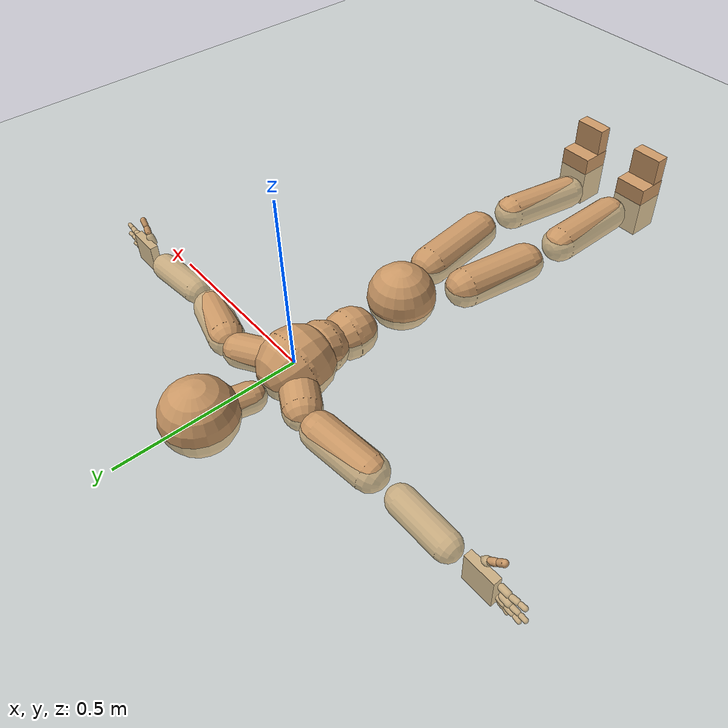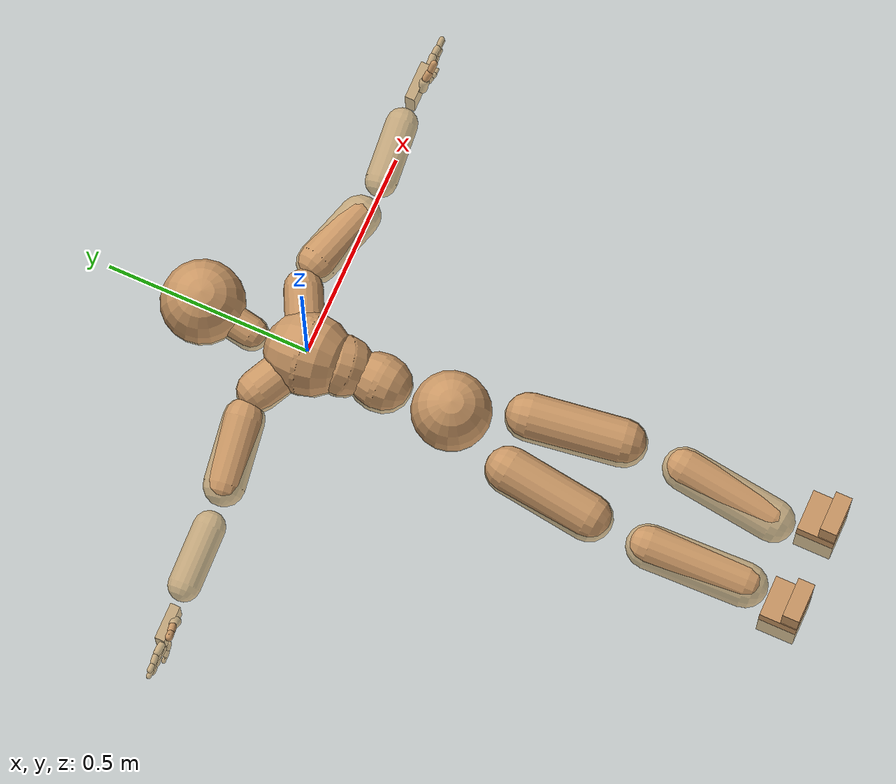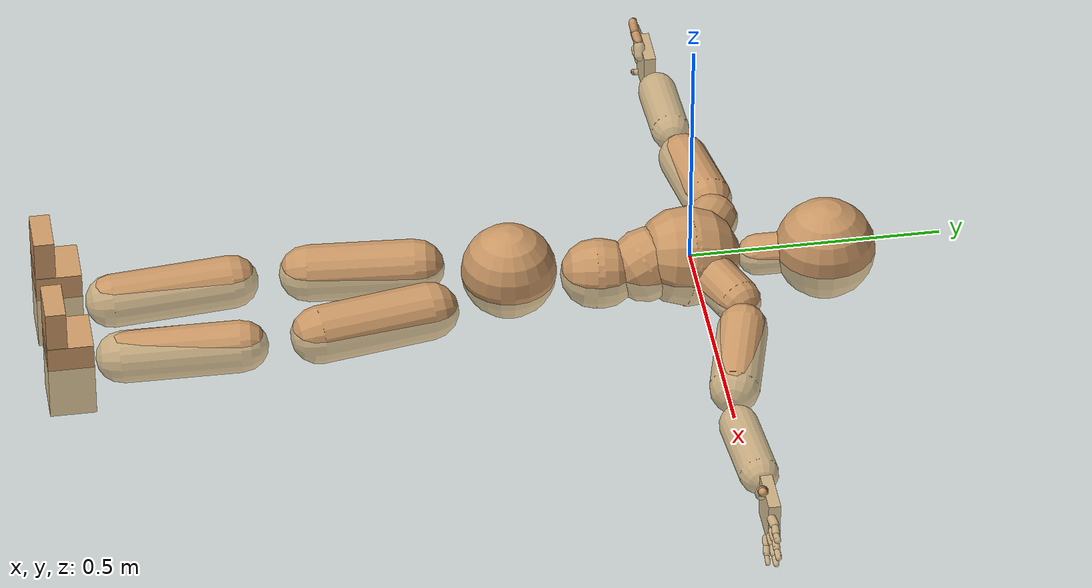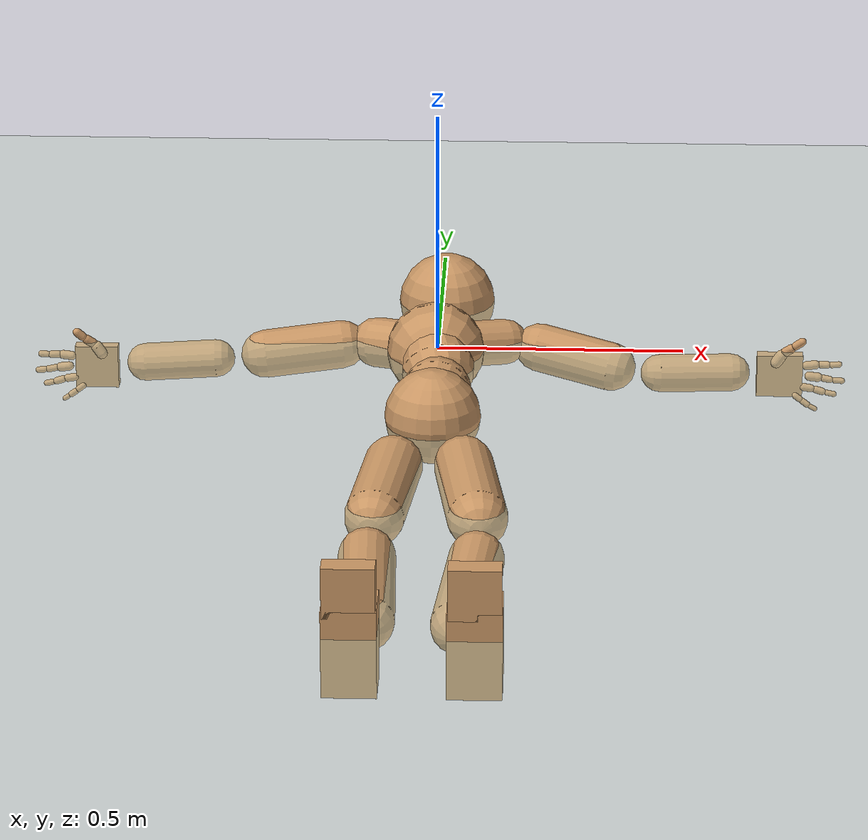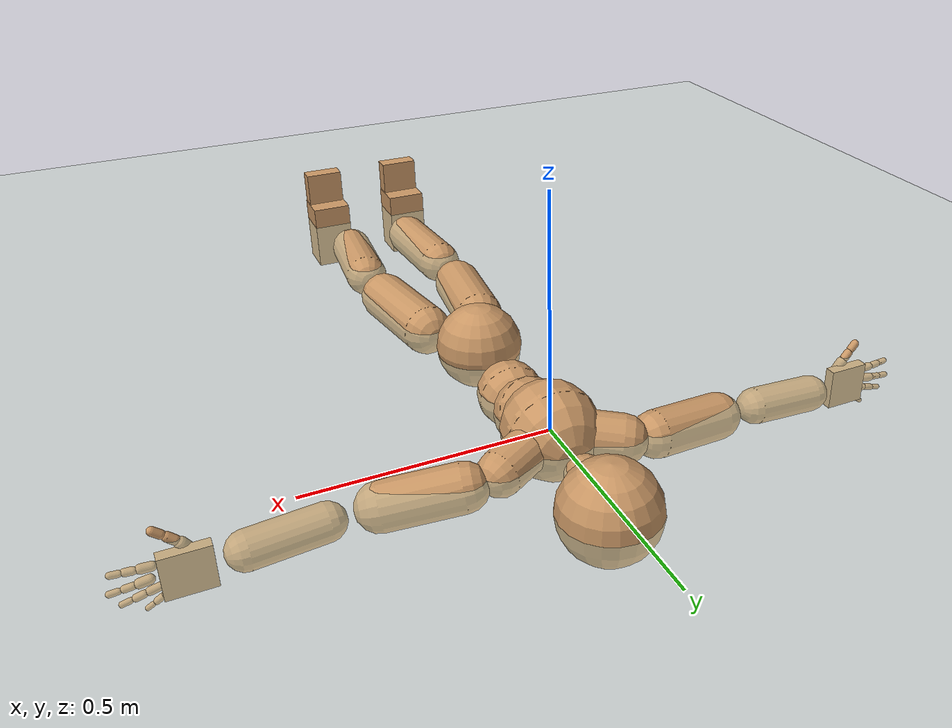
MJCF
<mujoco model="humanoid">
  <compiler coordinate="local"/>
  <default>
    <joint damping="0.0" armature="0.01" stiffness="0.0" limited="true"/>
    <geom conaffinity="1" condim="3" contype="7" margin="0.001" rgba="0.8 0.6 .4 1"/>
  </default>
  <asset>
    <texture type="skybox" builtin="gradient" rgb1=".4 .5 .6" rgb2="0 0 0" width="100" height="100"/>
    <texture builtin="flat" height="1278" mark="cross" markrgb="1 1 1" name="texgeom" random="0.01" rgb1="0.8 0.6 0.4" rgb2="0.8 0.6 0.4" type="cube" width="127"/>
    <texture builtin="checker" height="100" name="texplane" rgb1="0 0 0" rgb2="0.8 0.8 0.8" type="2d" width="100"/>
    <material name="MatPlane" reflectance="0.5" shininess="1" specular="1" texrepeat="60 60" texture="texplane"/>
    <material name="geom" texture="texgeom" texuniform="true"/>
  </asset>
  <worldbody>
    <light cutoff="100" diffuse="1 1 1" dir="-0 0 -1.3" directional="true" exponent="1" pos="0 0 1.3" specular=".1 .1 .1"/>
    <geom conaffinity="1" condim="3" name="floor" pos="0 0 0" rgba="0.8 0.9 0.8 1" size="100 100 .2" type="plane" material="MatPlane"/>
    <body name="Pelvis" pos="0.0029 -0.3606 0.0098">
      <freejoint name="Pelvis"/>
      <geom type="sphere" contype="1" conaffinity="1" density="4629.6296296296305" size="0.0943" pos="0.0000 0.0000 0.0000" name="Pelvis"/>
      <body name="L_Hip" pos="0.055 -0.0924 -0.0262">
        <joint name="L_Hip_x" type="hinge" pos="0 0 0" axis="1 0 0" user="250 2.5 1 500 10 2" armature="0.01" range="-90.0000 90.0000" damping="0" stiffness="0"/>
        <joint name="L_Hip_y" type="hinge" pos="0 0 0" axis="0 1 0" user="250 2.5 1 500 10 2" armature="0.01" range="-90.0000 90.0000" damping="0" stiffness="0"/>
        <joint name="L_Hip_z" type="hinge" pos="0 0 0" axis="0 0 1" user="250 2.5 1 500 10 2" armature="0.01" range="-90.0000 90.0000" damping="0" stiffness="0"/>
        <geom type="capsule" contype="1" conaffinity="1" density="2040.816327" fromto="0.0107 -0.0738 -0.0019 0.0428 -0.2954 -0.0077" size="0.0573" name="L_Hip"/>
        <body name="L_Knee" pos="0.0534 -0.3692 -0.0096">
          <joint name="L_Knee_x" type="hinge" pos="0 0 0" axis="1 0 0" user="250 2.5 1 500 10 2" armature="0.01" range="-180.0000 180.0000" damping="0" stiffness="0"/>
          <joint name="L_Knee_y" type="hinge" pos="0 0 0" axis="0 1 0" user="250 2.5 1 500 10 2" armature="0.01" range="-5.6250 5.6250" damping="0" stiffness="0"/>
          <joint name="L_Knee_z" type="hinge" pos="0 0 0" axis="0 0 1" user="250 2.5 1 500 10 2" armature="0.01" range="-5.6250 5.6250" damping="0" stiffness="0"/>
          <geom type="capsule" contype="1" conaffinity="1" density="1234.567901" fromto="-0.0084 -0.0778 -0.0061 -0.0336 -0.3112 -0.0243" size="0.0513" name="L_Knee"/>
          <body name="L_Ankle" pos="-0.042 -0.389 -0.0304">
            <joint name="L_Ankle_x" type="hinge" pos="0 0 0" axis="1 0 0" user="150 2.5 1 500 10 2" armature="0.01" range="-90.0000 90.0000" damping="0" stiffness="0"/>
            <joint name="L_Ankle_y" type="hinge" pos="0 0 0" axis="0 1 0" user="150 2.5 1 500 10 2" armature="0.01" range="-90.0000 90.0000" damping="0" stiffness="0"/>
            <joint name="L_Ankle_z" type="hinge" pos="0 0 0" axis="0 0 1" user="150 2.5 1 500 10 2" armature="0.01" range="-90.0000 90.0000" damping="0" stiffness="0"/>
            <geom type="box" density="442.922473" pos="0.0396 -0.0276 0.0233" size="0.0486 0.0454 0.0832" quat="1.0000 0.0000 0.0000 0.0000" name="L_Ankle"/>
            <body name="L_Toe" pos="0.0459 -0.0565 0.1157">
              <joint name="L_Toe_x" type="hinge" pos="0 0 0" axis="1 0 0" user="150 1 1 500 1 1" armature="0.01" range="-90.0000 90.0000" damping="0" stiffness="0"/>
              <joint name="L_Toe_y" type="hinge" pos="0 0 0" axis="0 1 0" user="150 1 1 500 1 1" armature="0.01" range="-45.0000 45.0000" damping="0" stiffness="0"/>
              <joint name="L_Toe_z" type="hinge" pos="0 0 0" axis="0 0 1" user="150 1 1 500 1 1" armature="0.01" range="-45.0000 45.0000" damping="0" stiffness="0"/>
              <geom type="box" density="423.30937" pos="-0.0063 0.0036 0.0252" size="0.0468 0.0201 0.0485" quat="1.0000 0.0000 0.0000 0.0000" name="L_Toe"/>
            </body>
          </body>
        </body>
      </body>
      <body name="R_Hip" pos="-0.06 -0.1037 -0.0219">
        <joint name="R_Hip_x" type="hinge" pos="0 0 0" axis="1 0 0" user="250 2.5 1 500 10 2" armature="0.01" range="-90.0000 90.0000" damping="0" stiffness="0"/>
        <joint name="R_Hip_y" type="hinge" pos="0 0 0" axis="0 1 0" user="250 2.5 1 500 10 2" armature="0.01" range="-90.0000 90.0000" damping="0" stiffness="0"/>
        <joint name="R_Hip_z" type="hinge" pos="0 0 0" axis="0 0 1" user="250 2.5 1 500 10 2" armature="0.01" range="-90.0000 90.0000" damping="0" stiffness="0"/>
        <geom type="capsule" contype="1" conaffinity="1" density="2040.816327" fromto="-0.0086 -0.0706 -0.0033 -0.0345 -0.2822 -0.0131" size="0.0566" name="R_Hip"/>
        <body name="R_Knee" pos="-0.0431 -0.3528 -0.0164">
          <joint name="R_Knee_x" type="hinge" pos="0 0 0" axis="1 0 0" user="250 2.5 1 500 10 2" armature="0.01" range="-180.0000 180.0000" damping="0" stiffness="0"/>
          <joint name="R_Knee_y" type="hinge" pos="0 0 0" axis="0 1 0" user="250 2.5 1 500 10 2" armature="0.01" range="-5.6250 5.6250" damping="0" stiffness="0"/>
          <joint name="R_Knee_z" type="hinge" pos="0 0 0" axis="0 0 1" user="250 2.5 1 500 10 2" armature="0.01" range="-5.6250 5.6250" damping="0" stiffness="0"/>
          <geom type="capsule" contype="1" conaffinity="1" density="1234.567901" fromto="0.0030 -0.0793 -0.0038 0.0121 -0.3173 -0.0153" size="0.0529" name="R_Knee"/>
          <body name="R_Ankle" pos="0.0151 -0.3966 -0.0192">
            <joint name="R_Ankle_x" type="hinge" pos="0 0 0" axis="1 0 0" user="150 1 1 500 10 2" armature="0.01" range="-90.0000 90.0000" damping="0" stiffness="0"/>
            <joint name="R_Ankle_y" type="hinge" pos="0 0 0" axis="0 1 0" user="150 1 1 500 10 2" armature="0.01" range="-90.0000 90.0000" damping="0" stiffness="0"/>
            <joint name="R_Ankle_z" type="hinge" pos="0 0 0" axis="0 0 1" user="150 1 1 500 10 2" armature="0.01" range="-90.0000 90.0000" damping="0" stiffness="0"/>
            <geom type="box" density="442.910592" pos="-0.0237 -0.0253 0.0146" size="0.0486 0.0454 0.0832" quat="1.0000 0.0000 0.0000 0.0000" name="R_Ankle"/>
            <body name="R_Toe" pos="-0.0378 -0.057 0.1166">
              <joint name="R_Toe_x" type="hinge" pos="0 0 0" axis="1 0 0" user="150 1 1 500 1 1" armature="0.01" range="-90.0000 90.0000" damping="0" stiffness="0"/>
              <joint name="R_Toe_y" type="hinge" pos="0 0 0" axis="0 1 0" user="150 1 1 500 1 1" armature="0.01" range="-45.0000 45.0000" damping="0" stiffness="0"/>
              <joint name="R_Toe_z" type="hinge" pos="0 0 0" axis="0 0 1" user="150 1 1 500 1 1" armature="0.01" range="-45.0000 45.0000" damping="0" stiffness="0"/>
              <geom type="box" density="423.315883" pos="0.0141 0.0064 0.0156" size="0.0468 0.0201 0.0485" quat="1.0000 0.0000 0.0000 0.0000" name="R_Toe"/>
            </body>
          </body>
        </body>
      </body>
      <body name="Torso" pos="-0.0024 0.1092 -0.0251">
        <joint name="Torso_x" type="hinge" pos="0 0 0" axis="1 0 0" user="500 5 1 500 10 2" armature="0.01" range="-60.0000 60.0000" damping="0" stiffness="0"/>
        <joint name="Torso_y" type="hinge" pos="0 0 0" axis="0 1 0" user="500 5 1 500 10 2" armature="0.01" range="-60.0000 60.0000" damping="0" stiffness="0"/>
        <joint name="Torso_z" type="hinge" pos="0 0 0" axis="0 0 1" user="500 5 1 500 10 2" armature="0.01" range="-60.0000 60.0000" damping="0" stiffness="0"/>
        <geom type="capsule" contype="1" conaffinity="1" density="2040.816327" fromto="0.0038 0.0624 -0.0022 0.0047 0.0763 -0.0027" size="0.0692" name="Torso"/>
        <body name="Spine" pos="0.0085 0.1388 -0.0048">
          <joint name="Spine_x" type="hinge" pos="0 0 0" axis="1 0 0" user="500 5 1 500 10 2" armature="0.01" range="-60.0000 60.0000" damping="0" stiffness="0"/>
          <joint name="Spine_y" type="hinge" pos="0 0 0" axis="0 1 0" user="500 5 1 500 10 2" armature="0.01" range="-60.0000 60.0000" damping="0" stiffness="0"/>
          <joint name="Spine_z" type="hinge" pos="0 0 0" axis="0 0 1" user="500 5 1 500 10 2" armature="0.01" range="-60.0000 60.0000" damping="0" stiffness="0"/>
          <geom type="capsule" contype="1" conaffinity="1" density="2040.816327" fromto="-0.0049 0.0238 0.0114 -0.0060 0.0291 0.0139" size="0.0735" name="Spine"/>
          <body name="Chest" pos="-0.0109 0.0528 0.0253">
            <joint name="Chest_x" type="hinge" pos="0 0 0" axis="1 0 0" user="500 5 1 500 10 2" armature="0.01" range="-60.0000 60.0000" damping="0" stiffness="0"/>
            <joint name="Chest_y" type="hinge" pos="0 0 0" axis="0 1 0" user="500 5 1 500 10 2" armature="0.01" range="-60.0000 60.0000" damping="0" stiffness="0"/>
            <joint name="Chest_z" type="hinge" pos="0 0 0" axis="0 0 1" user="500 5 1 500 10 2" armature="0.01" range="-60.0000 60.0000" damping="0" stiffness="0"/>
            <geom type="capsule" contype="1" conaffinity="1" density="2040.816327" fromto="-0.0018 0.0500 -0.0072 -0.0022 0.0612 -0.0089" size="0.0991" name="Chest"/>
            <body name="Neck" pos="-0.0114 0.1648 -0.0293">
              <joint name="Neck_x" type="hinge" pos="0 0 0" axis="1 0 0" user="150 1 1 250 50 4" armature="0.01" range="-180.0000 180.0000" damping="0" stiffness="0"/>
              <joint name="Neck_y" type="hinge" pos="0 0 0" axis="0 1 0" user="150 1 1 250 50 4" armature="0.01" range="-180.0000 180.0000" damping="0" stiffness="0"/>
              <joint name="Neck_z" type="hinge" pos="0 0 0" axis="0 0 1" user="150 1 1 250 50 4" armature="0.01" range="-180.0000 180.0000" damping="0" stiffness="0"/>
              <geom type="capsule" contype="1" conaffinity="1" density="1000" fromto="0.0048 0.0328 0.0041 0.0193 0.1310 0.0163" size="0.0412" name="Neck"/>
              <body name="Head" pos="0.0241 0.1638 0.0204">
                <joint name="Head_x" type="hinge" pos="0 0 0" axis="1 0 0" user="150 1 1 250 50 4" armature="0.01" range="-90.0000 90.0000" damping="0" stiffness="0"/>
                <joint name="Head_y" type="hinge" pos="0 0 0" axis="0 1 0" user="150 1 1 250 50 4" armature="0.01" range="-90.0000 90.0000" damping="0" stiffness="0"/>
                <joint name="Head_z" type="hinge" pos="0 0 0" axis="0 0 1" user="150 1 1 250 50 4" armature="0.01" range="-90.0000 90.0000" damping="0" stiffness="0"/>
                <geom type="sphere" contype="1" conaffinity="1" density="1000" size="0.1002" pos="0.0000 0.0000 0.0000" name="Head"/>
              </body>
            </body>
            <body name="L_Thorax" pos="0.0453 0.0847 -0.0065">
              <joint name="L_Thorax_x" type="hinge" pos="0 0 0" axis="1 0 0" user="200 2 1 500 50 4" armature="0.01" range="-180.0000 180.0000" damping="0" stiffness="0"/>
              <joint name="L_Thorax_y" type="hinge" pos="0 0 0" axis="0 1 0" user="200 2 1 500 50 4" armature="0.01" range="-180.0000 180.0000" damping="0" stiffness="0"/>
              <joint name="L_Thorax_z" type="hinge" pos="0 0 0" axis="0 0 1" user="200 2 1 500 50 4" armature="0.01" range="-180.0000 180.0000" damping="0" stiffness="0"/>
              <geom type="capsule" contype="1" conaffinity="1" density="1000" fromto="0.0230 0.0116 -0.0030 0.0919 0.0465 -0.0120" size="0.0468" name="L_Thorax"/>
              <body name="L_Shoulder" pos="0.1149 0.0582 -0.015">
                <joint name="L_Shoulder_x" type="hinge" pos="0 0 0" axis="1 0 0" user="200 2 1 500 50 4" armature="0.01" range="-180.0000 180.0000" damping="0" stiffness="0"/>
                <joint name="L_Shoulder_y" type="hinge" pos="0 0 0" axis="0 1 0" user="200 2 1 500 50 4" armature="0.01" range="-180.0000 180.0000" damping="0" stiffness="0"/>
                <joint name="L_Shoulder_z" type="hinge" pos="0 0 0" axis="0 0 1" user="200 2 1 500 50 4" armature="0.01" range="-180.0000 180.0000" damping="0" stiffness="0"/>
                <geom type="capsule" contype="1" conaffinity="1" density="1000" fromto="0.0494 -0.0140 -0.0078 0.1978 -0.0560 -0.0312" size="0.0495" name="L_Shoulder"/>
                <body name="L_Elbow" pos="0.2472 -0.0699 -0.039">
                  <joint name="L_Elbow_x" type="hinge" pos="0 0 0" axis="1 0 0" user="150 1 1 150 10 2" armature="0.01" range="-720.0000 720.0000" damping="0" stiffness="0"/>
                  <joint name="L_Elbow_y" type="hinge" pos="0 0 0" axis="0 1 0" user="150 1 1 150 10 2" armature="0.01" range="-720.0000 720.0000" damping="0" stiffness="0"/>
                  <joint name="L_Elbow_z" type="hinge" pos="0 0 0" axis="0 0 1" user="150 1 1 150 10 2" armature="0.01" range="-720.0000 720.0000" damping="0" stiffness="0"/>
                  <geom type="capsule" contype="1" conaffinity="1" density="1000" fromto="0.0489 0.0043 -0.0006 0.1957 0.0172 -0.0024" size="0.0385" name="L_Elbow"/>
                  <body name="L_Wrist" pos="0.2447 0.0215 -0.003">
                    <joint name="L_Wrist_x" type="hinge" pos="0 0 0" axis="1 0 0" user="100 1 1 150 1 1" armature="0.01" range="-180.0000 180.0000" damping="0" stiffness="0"/>
                    <joint name="L_Wrist_y" type="hinge" pos="0 0 0" axis="0 1 0" user="100 1 1 150 1 1" armature="0.01" range="-180.0000 180.0000" damping="0" stiffness="0"/>
                    <joint name="L_Wrist_z" type="hinge" pos="0 0 0" axis="0 0 1" user="100 1 1 150 1 1" armature="0.01" range="-180.0000 180.0000" damping="0" stiffness="0"/>
                    <geom type="box" density="1201.77306" pos="0.0505 -0.0013 -0.0032" size="0.0467 0.0118 0.045" quat="1.0000 0.0000 0.0000 0.0000" name="L_Wrist"/>
                    <body name="L_Index1" pos="0.0984 -0.0086 0.0189">
                      <joint name="L_Index1_x" type="hinge" pos="0 0 0" axis="1 0 0" user="100 10 1 150" armature="0.01" range="-180.0000 180.0000" damping="0" stiffness="0"/>
                      <joint name="L_Index1_y" type="hinge" pos="0 0 0" axis="0 1 0" user="100 10 1 150" armature="0.01" range="-180.0000 180.0000" damping="0" stiffness="0"/>
                      <joint name="L_Index1_z" type="hinge" pos="0 0 0" axis="0 0 1" user="100 10 1 150" armature="0.01" range="-180.0000 180.0000" damping="0" stiffness="0"/>
                      <geom type="capsule" contype="1" conaffinity="1" density="1000" fromto="0.0063 0.0004 0.0006 0.0251 0.0017 0.0024" size="0.0089" name="L_Index1"/>
                      <body name="L_Index2" pos="0.0314 0.0021 0.0029">
                        <joint name="L_Index2_x" type="hinge" pos="0 0 0" axis="1 0 0" user="100 10 1 150" armature="0.01" range="-180.0000 180.0000" damping="0" stiffness="0"/>
                        <joint name="L_Index2_y" type="hinge" pos="0 0 0" axis="0 1 0" user="100 10 1 150" armature="0.01" range="-180.0000 180.0000" damping="0" stiffness="0"/>
                        <joint name="L_Index2_z" type="hinge" pos="0 0 0" axis="0 0 1" user="100 10 1 150" armature="0.01" range="-180.0000 180.0000" damping="0" stiffness="0"/>
                        <geom type="capsule" contype="1" conaffinity="1" density="1000" fromto="0.0044 -0.0005 0.0000 0.0177 -0.0019 0.0000" size="0.0074" name="L_Index2"/>
                        <body name="L_Index3" pos="0.0222 -0.0023 0">
                          <joint name="L_Index3_x" type="hinge" pos="0 0 0" axis="1 0 0" user="100 10 1 150" armature="0.01" range="-180.0000 180.0000" damping="0" stiffness="0"/>
                          <joint name="L_Index3_y" type="hinge" pos="0 0 0" axis="0 1 0" user="100 10 1 150" armature="0.01" range="-180.0000 180.0000" damping="0" stiffness="0"/>
                          <joint name="L_Index3_z" type="hinge" pos="0 0 0" axis="0 0 1" user="100 10 1 150" armature="0.01" range="-180.0000 180.0000" damping="0" stiffness="0"/>
                          <geom type="capsule" contype="1" conaffinity="1" density="1000" fromto="0.0048 -0.0001 0.0004 0.0193 -0.0003 0.0016" size="0.0063" name="L_Index3"/>
                        </body>
                      </body>
                    </body>
                    <body name="L_Middle1" pos="0.1056 -0.0063 -0.0039">
                      <joint name="L_Middle1_x" type="hinge" pos="0 0 0" axis="1 0 0" user="100 10 1 150" armature="0.01" range="-180.0000 180.0000" damping="0" stiffness="0"/>
                      <joint name="L_Middle1_y" type="hinge" pos="0 0 0" axis="0 1 0" user="100 10 1 150" armature="0.01" range="-180.0000 180.0000" damping="0" stiffness="0"/>
                      <joint name="L_Middle1_z" type="hinge" pos="0 0 0" axis="0 0 1" user="100 10 1 150" armature="0.01" range="-180.0000 180.0000" damping="0" stiffness="0"/>
                      <geom type="capsule" contype="1" conaffinity="1" density="1000" fromto="0.0060 0.0001 -0.0008 0.0240 0.0006 -0.0032" size="0.0092" name="L_Middle1"/>
                      <body name="L_Middle2" pos="0.03 0.0007 -0.004">
                        <joint name="L_Middle2_x" type="hinge" pos="0 0 0" axis="1 0 0" user="100 10 1 150" armature="0.01" range="-180.0000 180.0000" damping="0" stiffness="0"/>
                        <joint name="L_Middle2_y" type="hinge" pos="0 0 0" axis="0 1 0" user="100 10 1 150" armature="0.01" range="-180.0000 180.0000" damping="0" stiffness="0"/>
                        <joint name="L_Middle2_z" type="hinge" pos="0 0 0" axis="0 0 1" user="100 10 1 150" armature="0.01" range="-180.0000 180.0000" damping="0" stiffness="0"/>
                        <geom type="capsule" contype="1" conaffinity="1" density="1000" fromto="0.0046 -0.0004 -0.0008 0.0185 -0.0016 -0.0032" size="0.0069" name="L_Middle2"/>
                        <body name="L_Middle3" pos="0.0231 -0.0019 -0.004">
                          <joint name="L_Middle3_x" type="hinge" pos="0 0 0" axis="1 0 0" user="100 10 1 150" armature="0.01" range="-180.0000 180.0000" damping="0" stiffness="0"/>
                          <joint name="L_Middle3_y" type="hinge" pos="0 0 0" axis="0 1 0" user="100 10 1 150" armature="0.01" range="-180.0000 180.0000" damping="0" stiffness="0"/>
                          <joint name="L_Middle3_z" type="hinge" pos="0 0 0" axis="0 0 1" user="100 10 1 150" armature="0.01" range="-180.0000 180.0000" damping="0" stiffness="0"/>
                          <geom type="capsule" contype="1" conaffinity="1" density="1000" fromto="0.0050 0.0000 -0.0004 0.0201 0.0000 -0.0016" size="0.006" name="L_Middle3"/>
                        </body>
                      </body>
                    </body>
                    <body name="L_Pinky1" pos="0.081 -0.0143 -0.0428">
                      <joint name="L_Pinky1_x" type="hinge" pos="0 0 0" axis="1 0 0" user="100 10 1 150" armature="0.01" range="-180.0000 180.0000" damping="0" stiffness="0"/>
                      <joint name="L_Pinky1_y" type="hinge" pos="0 0 0" axis="0 1 0" user="100 10 1 150" armature="0.01" range="-180.0000 180.0000" damping="0" stiffness="0"/>
                      <joint name="L_Pinky1_z" type="hinge" pos="0 0 0" axis="0 0 1" user="100 10 1 150" armature="0.01" range="-180.0000 180.0000" damping="0" stiffness="0"/>
                      <geom type="capsule" contype="1" conaffinity="1" density="1000" fromto="0.0030 -0.0002 -0.0023 0.0121 -0.0009 -0.0094" size="0.0065" name="L_Pinky1"/>
                      <body name="L_Pinky2" pos="0.0152 -0.0011 -0.0117">
                        <joint name="L_Pinky2_x" type="hinge" pos="0 0 0" axis="1 0 0" user="100 10 1 150" armature="0.01" range="-180.0000 180.0000" damping="0" stiffness="0"/>
                        <joint name="L_Pinky2_y" type="hinge" pos="0 0 0" axis="0 1 0" user="100 10 1 150" armature="0.01" range="-180.0000 180.0000" damping="0" stiffness="0"/>
                        <joint name="L_Pinky2_z" type="hinge" pos="0 0 0" axis="0 0 1" user="100 10 1 150" armature="0.01" range="-180.0000 180.0000" damping="0" stiffness="0"/>
                        <geom type="capsule" contype="1" conaffinity="1" density="1000" fromto="0.0030 -0.0003 -0.0022 0.0122 -0.0013 -0.0088" size="0.0064" name="L_Pinky2"/>
                        <body name="L_Pinky3" pos="0.0152 -0.0016 -0.011">
                          <joint name="L_Pinky3_x" type="hinge" pos="0 0 0" axis="1 0 0" user="100 10 1 150" armature="0.01" range="-180.0000 180.0000" damping="0" stiffness="0"/>
                          <joint name="L_Pinky3_y" type="hinge" pos="0 0 0" axis="0 1 0" user="100 10 1 150" armature="0.01" range="-180.0000 180.0000" damping="0" stiffness="0"/>
                          <joint name="L_Pinky3_z" type="hinge" pos="0 0 0" axis="0 0 1" user="100 10 1 150" armature="0.01" range="-180.0000 180.0000" damping="0" stiffness="0"/>
                          <geom type="capsule" contype="1" conaffinity="1" density="1000" fromto="0.0034 0.0001 -0.0018 0.0138 0.0003 -0.0072" size="0.0049" name="L_Pinky3"/>
                        </body>
                      </body>
                    </body>
                    <body name="L_Ring1" pos="0.094 -0.0091 -0.0268">
                      <joint name="L_Ring1_x" type="hinge" pos="0 0 0" axis="1 0 0" user="100 10 1 150" armature="0.01" range="-180.0000 180.0000" damping="0" stiffness="0"/>
                      <joint name="L_Ring1_y" type="hinge" pos="0 0 0" axis="0 1 0" user="100 10 1 150" armature="0.01" range="-180.0000 180.0000" damping="0" stiffness="0"/>
                      <joint name="L_Ring1_z" type="hinge" pos="0 0 0" axis="0 0 1" user="100 10 1 150" armature="0.01" range="-180.0000 180.0000" damping="0" stiffness="0"/>
                      <geom type="capsule" contype="1" conaffinity="1" density="1000" fromto="0.0055 0.0003 -0.0010 0.0220 0.0012 -0.0041" size="0.0078" name="L_Ring1"/>
                      <body name="L_Ring2" pos="0.0275 0.0015 -0.0052">
                        <joint name="L_Ring2_x" type="hinge" pos="0 0 0" axis="1 0 0" user="100 10 1 150" armature="0.01" range="-180.0000 180.0000" damping="0" stiffness="0"/>
                        <joint name="L_Ring2_y" type="hinge" pos="0 0 0" axis="0 1 0" user="100 10 1 150" armature="0.01" range="-180.0000 180.0000" damping="0" stiffness="0"/>
                        <joint name="L_Ring2_z" type="hinge" pos="0 0 0" axis="0 0 1" user="100 10 1 150" armature="0.01" range="-180.0000 180.0000" damping="0" stiffness="0"/>
                        <geom type="capsule" contype="1" conaffinity="1" density="1000" fromto="0.0045 -0.0003 -0.0014 0.0179 -0.0011 -0.0056" size="0.0073" name="L_Ring2"/>
                        <body name="L_Ring3" pos="0.0224 -0.0014 -0.0069">
                          <joint name="L_Ring3_x" type="hinge" pos="0 0 0" axis="1 0 0" user="100 10 1 150" armature="0.01" range="-180.0000 180.0000" damping="0" stiffness="0"/>
                          <joint name="L_Ring3_y" type="hinge" pos="0 0 0" axis="0 1 0" user="100 10 1 150" armature="0.01" range="-180.0000 180.0000" damping="0" stiffness="0"/>
                          <joint name="L_Ring3_z" type="hinge" pos="0 0 0" axis="0 0 1" user="100 10 1 150" armature="0.01" range="-180.0000 180.0000" damping="0" stiffness="0"/>
                          <geom type="capsule" contype="1" conaffinity="1" density="1000" fromto="0.0049 0.0001 -0.0010 0.0195 0.0005 -0.0040" size="0.0056" name="L_Ring3"/>
                        </body>
                      </body>
                    </body>
                    <body name="L_Thumb1" pos="0.0389 -0.0175 0.0249">
                      <joint name="L_Thumb1_x" type="hinge" pos="0 0 0" axis="1 0 0" user="100 10 1 150" armature="0.01" range="-180.0000 180.0000" damping="0" stiffness="0"/>
                      <joint name="L_Thumb1_y" type="hinge" pos="0 0 0" axis="0 1 0" user="100 10 1 150" armature="0.01" range="-180.0000 180.0000" damping="0" stiffness="0"/>
                      <joint name="L_Thumb1_z" type="hinge" pos="0 0 0" axis="0 0 1" user="100 10 1 150" armature="0.01" range="-180.0000 180.0000" damping="0" stiffness="0"/>
                      <geom type="capsule" contype="1" conaffinity="1" density="1000" fromto="0.0033 0.0002 0.0049 0.0133 0.0007 0.0196" size="0.0117" name="L_Thumb1"/>
                      <body name="L_Thumb2" pos="0.0166 0.0009 0.0245">
                        <joint name="L_Thumb2_x" type="hinge" pos="0 0 0" axis="1 0 0" user="100 10 1 150" armature="0.01" range="-180.0000 180.0000" damping="0" stiffness="0"/>
                        <joint name="L_Thumb2_y" type="hinge" pos="0 0 0" axis="0 1 0" user="100 10 1 150" armature="0.01" range="-180.0000 180.0000" damping="0" stiffness="0"/>
                        <joint name="L_Thumb2_z" type="hinge" pos="0 0 0" axis="0 0 1" user="100 10 1 150" armature="0.01" range="-180.0000 180.0000" damping="0" stiffness="0"/>
                        <geom type="capsule" contype="1" conaffinity="1" density="1000" fromto="0.0040 -0.0010 0.0030 0.0162 -0.0040 0.0122" size="0.0093" name="L_Thumb2"/>
                        <body name="L_Thumb3" pos="0.0202 -0.005 0.0152">
                          <joint name="L_Thumb3_x" type="hinge" pos="0 0 0" axis="1 0 0" user="100 10 1 150" armature="0.01" range="-180.0000 180.0000" damping="0" stiffness="0"/>
                          <joint name="L_Thumb3_y" type="hinge" pos="0 0 0" axis="0 1 0" user="100 10 1 150" armature="0.01" range="-180.0000 180.0000" damping="0" stiffness="0"/>
                          <joint name="L_Thumb3_z" type="hinge" pos="0 0 0" axis="0 0 1" user="100 10 1 150" armature="0.01" range="-180.0000 180.0000" damping="0" stiffness="0"/>
                          <geom type="capsule" contype="1" conaffinity="1" density="1000" fromto="0.0044 -0.0006 0.0034 0.0178 -0.0024 0.0138" size="0.0085" name="L_Thumb3"/>
                        </body>
                      </body>
                    </body>
                  </body>
                </body>
              </body>
            </body>
            <body name="R_Thorax" pos="-0.0459 0.0842 -0.0125">
              <joint name="R_Thorax_x" type="hinge" pos="0 0 0" axis="1 0 0" user="200 2 1 150 10 2" armature="0.01" range="-180.0000 180.0000" damping="0" stiffness="0"/>
              <joint name="R_Thorax_y" type="hinge" pos="0 0 0" axis="0 1 0" user="200 2 1 150 10 2" armature="0.01" range="-180.0000 180.0000" damping="0" stiffness="0"/>
              <joint name="R_Thorax_z" type="hinge" pos="0 0 0" axis="0 0 1" user="200 2 1 150 10 2" armature="0.01" range="-180.0000 180.0000" damping="0" stiffness="0"/>
              <geom type="capsule" contype="1" conaffinity="1" density="1000" fromto="-0.0198 0.0107 -0.0023 -0.0791 0.0430 -0.0093" size="0.0515" name="R_Thorax"/>
              <body name="R_Shoulder" pos="-0.0989 0.0537 -0.0116">
                <joint name="R_Shoulder_x" type="hinge" pos="0 0 0" axis="1 0 0" user="200 2 1 250 10 2" armature="0.01" range="-180.0000 180.0000" damping="0" stiffness="0"/>
                <joint name="R_Shoulder_y" type="hinge" pos="0 0 0" axis="0 1 0" user="200 2 1 250 10 2" armature="0.01" range="-180.0000 180.0000" damping="0" stiffness="0"/>
                <joint name="R_Shoulder_z" type="hinge" pos="0 0 0" axis="0 0 1" user="200 2 1 250 10 2" armature="0.01" range="-180.0000 180.0000" damping="0" stiffness="0"/>
                <geom type="capsule" contype="1" conaffinity="1" density="1000" fromto="-0.0527 -0.0071 -0.0049 -0.2109 -0.0286 -0.0196" size="0.0495" name="R_Shoulder"/>
                <body name="R_Elbow" pos="-0.2636 -0.0357 -0.0245">
                  <joint name="R_Elbow_x" type="hinge" pos="0 0 0" axis="1 0 0" user="150 1 1 150 10 2" armature="0.01" range="-720.0000 720.0000" damping="0" stiffness="0"/>
                  <joint name="R_Elbow_y" type="hinge" pos="0 0 0" axis="0 1 0" user="150 1 1 150 10 2" armature="0.01" range="-720.0000 720.0000" damping="0" stiffness="0"/>
                  <joint name="R_Elbow_z" type="hinge" pos="0 0 0" axis="0 0 1" user="150 1 1 150 10 2" armature="0.01" range="-720.0000 720.0000" damping="0" stiffness="0"/>
                  <geom type="capsule" contype="1" conaffinity="1" density="1000" fromto="-0.0484 -0.0009 -0.0031 -0.1936 -0.0038 -0.0123" size="0.0387" name="R_Elbow"/>
                  <body name="R_Wrist" pos="-0.242 -0.0047 -0.0154">
                    <joint name="R_Wrist_x" type="hinge" pos="0 0 0" axis="1 0 0" user="100 1 1 150 1 1" armature="0.01" range="-180.0000 180.0000" damping="0" stiffness="0"/>
                    <joint name="R_Wrist_y" type="hinge" pos="0 0 0" axis="0 1 0" user="100 1 1 150 1 1" armature="0.01" range="-180.0000 180.0000" damping="0" stiffness="0"/>
                    <joint name="R_Wrist_z" type="hinge" pos="0 0 0" axis="0 0 1" user="100 1 1 150 1 1" armature="0.01" range="-180.0000 180.0000" damping="0" stiffness="0"/>
                    <geom type="box" density="1234.390022" pos="-0.0518 -0.0044 -0.0028" size="0.0439 0.0118 0.045" quat="1.0000 0.0000 0.0000 0.0000" name="R_Wrist"/>
                    <body name="R_Index1" pos="-0.0964 -0.0116 0.0193">
                      <joint name="R_Index1_x" type="hinge" pos="0 0 0" axis="1 0 0" user="100 10 1 150" armature="0.01" range="-180.0000 180.0000" damping="0" stiffness="0"/>
                      <joint name="R_Index1_y" type="hinge" pos="0 0 0" axis="0 1 0" user="100 10 1 150" armature="0.01" range="-180.0000 180.0000" damping="0" stiffness="0"/>
                      <joint name="R_Index1_z" type="hinge" pos="0 0 0" axis="0 0 1" user="100 10 1 150" armature="0.01" range="-180.0000 180.0000" damping="0" stiffness="0"/>
                      <geom type="capsule" contype="1" conaffinity="1" density="1000" fromto="-0.0063 0.0004 0.0006 -0.0251 0.0017 0.0024" size="0.0089" name="R_Index1"/>
                      <body name="R_Index2" pos="-0.0314 0.0021 0.0029">
                        <joint name="R_Index2_x" type="hinge" pos="0 0 0" axis="1 0 0" user="100 10 1 150" armature="0.01" range="-180.0000 180.0000" damping="0" stiffness="0"/>
                        <joint name="R_Index2_y" type="hinge" pos="0 0 0" axis="0 1 0" user="100 10 1 150" armature="0.01" range="-180.0000 180.0000" damping="0" stiffness="0"/>
                        <joint name="R_Index2_z" type="hinge" pos="0 0 0" axis="0 0 1" user="100 10 1 150" armature="0.01" range="-180.0000 180.0000" damping="0" stiffness="0"/>
                        <geom type="capsule" contype="1" conaffinity="1" density="1000" fromto="-0.0044 -0.0005 0.0000 -0.0177 -0.0019 0.0000" size="0.0075" name="R_Index2"/>
                        <body name="R_Index3" pos="-0.0222 -0.0023 0">
                          <joint name="R_Index3_x" type="hinge" pos="0 0 0" axis="1 0 0" user="100 10 1 150" armature="0.01" range="-180.0000 180.0000" damping="0" stiffness="0"/>
                          <joint name="R_Index3_y" type="hinge" pos="0 0 0" axis="0 1 0" user="100 10 1 150" armature="0.01" range="-180.0000 180.0000" damping="0" stiffness="0"/>
                          <joint name="R_Index3_z" type="hinge" pos="0 0 0" axis="0 0 1" user="100 10 1 150" armature="0.01" range="-180.0000 180.0000" damping="0" stiffness="0"/>
                          <geom type="capsule" contype="1" conaffinity="1" density="1000" fromto="-0.0040 -0.0001 0.0004 -0.0161 -0.0003 0.0016" size="0.0066" name="R_Index3"/>
                        </body>
                      </body>
                    </body>
                    <body name="R_Middle1" pos="-0.1037 -0.0094 -0.0036">
                      <joint name="R_Middle1_x" type="hinge" pos="0 0 0" axis="1 0 0" user="100 10 1 150" armature="0.01" range="-180.0000 180.0000" damping="0" stiffness="0"/>
                      <joint name="R_Middle1_y" type="hinge" pos="0 0 0" axis="0 1 0" user="100 10 1 150" armature="0.01" range="-180.0000 180.0000" damping="0" stiffness="0"/>
                      <joint name="R_Middle1_z" type="hinge" pos="0 0 0" axis="0 0 1" user="100 10 1 150" armature="0.01" range="-180.0000 180.0000" damping="0" stiffness="0"/>
                      <geom type="capsule" contype="1" conaffinity="1" density="1000" fromto="-0.0060 0.0001 -0.0008 -0.0240 0.0006 -0.0032" size="0.0092" name="R_Middle1"/>
                      <body name="R_Middle2" pos="-0.03 0.0007 -0.004">
                        <joint name="R_Middle2_x" type="hinge" pos="0 0 0" axis="1 0 0" user="100 10 1 150" armature="0.01" range="-180.0000 180.0000" damping="0" stiffness="0"/>
                        <joint name="R_Middle2_y" type="hinge" pos="0 0 0" axis="0 1 0" user="100 10 1 150" armature="0.01" range="-180.0000 180.0000" damping="0" stiffness="0"/>
                        <joint name="R_Middle2_z" type="hinge" pos="0 0 0" axis="0 0 1" user="100 10 1 150" armature="0.01" range="-180.0000 180.0000" damping="0" stiffness="0"/>
                        <geom type="capsule" contype="1" conaffinity="1" density="1000" fromto="-0.0046 -0.0004 -0.0008 -0.0185 -0.0016 -0.0032" size="0.0069" name="R_Middle2"/>
                        <body name="R_Middle3" pos="-0.0231 -0.0019 -0.004">
                          <joint name="R_Middle3_x" type="hinge" pos="0 0 0" axis="1 0 0" user="100 10 1 150" armature="0.01" range="-180.0000 180.0000" damping="0" stiffness="0"/>
                          <joint name="R_Middle3_y" type="hinge" pos="0 0 0" axis="0 1 0" user="100 10 1 150" armature="0.01" range="-180.0000 180.0000" damping="0" stiffness="0"/>
                          <joint name="R_Middle3_z" type="hinge" pos="0 0 0" axis="0 0 1" user="100 10 1 150" armature="0.01" range="-180.0000 180.0000" damping="0" stiffness="0"/>
                          <geom type="capsule" contype="1" conaffinity="1" density="1000" fromto="-0.0042 0.0000 -0.0004 -0.0169 0.0000 -0.0016" size="0.0063" name="R_Middle3"/>
                        </body>
                      </body>
                    </body>
                    <body name="R_Pinky1" pos="-0.079 -0.0173 -0.0425">
                      <joint name="R_Pinky1_x" type="hinge" pos="0 0 0" axis="1 0 0" user="100 10 1 150" armature="0.01" range="-180.0000 180.0000" damping="0" stiffness="0"/>
                      <joint name="R_Pinky1_y" type="hinge" pos="0 0 0" axis="0 1 0" user="100 10 1 150" armature="0.01" range="-180.0000 180.0000" damping="0" stiffness="0"/>
                      <joint name="R_Pinky1_z" type="hinge" pos="0 0 0" axis="0 0 1" user="100 10 1 150" armature="0.01" range="-180.0000 180.0000" damping="0" stiffness="0"/>
                      <geom type="capsule" contype="1" conaffinity="1" density="1000" fromto="-0.0030 -0.0002 -0.0023 -0.0121 -0.0009 -0.0094" size="0.0065" name="R_Pinky1"/>
                      <body name="R_Pinky2" pos="-0.0152 -0.0011 -0.0117">
                        <joint name="R_Pinky2_x" type="hinge" pos="0 0 0" axis="1 0 0" user="100 10 1 150" armature="0.01" range="-180.0000 180.0000" damping="0" stiffness="0"/>
                        <joint name="R_Pinky2_y" type="hinge" pos="0 0 0" axis="0 1 0" user="100 10 1 150" armature="0.01" range="-180.0000 180.0000" damping="0" stiffness="0"/>
                        <joint name="R_Pinky2_z" type="hinge" pos="0 0 0" axis="0 0 1" user="100 10 1 150" armature="0.01" range="-180.0000 180.0000" damping="0" stiffness="0"/>
                        <geom type="capsule" contype="1" conaffinity="1" density="1000" fromto="-0.0030 -0.0003 -0.0022 -0.0122 -0.0013 -0.0088" size="0.0064" name="R_Pinky2"/>
                        <body name="R_Pinky3" pos="-0.0152 -0.0016 -0.011">
                          <joint name="R_Pinky3_x" type="hinge" pos="0 0 0" axis="1 0 0" user="100 10 1 150" armature="0.01" range="-180.0000 180.0000" damping="0" stiffness="0"/>
                          <joint name="R_Pinky3_y" type="hinge" pos="0 0 0" axis="0 1 0" user="100 10 1 150" armature="0.01" range="-180.0000 180.0000" damping="0" stiffness="0"/>
                          <joint name="R_Pinky3_z" type="hinge" pos="0 0 0" axis="0 0 1" user="100 10 1 150" armature="0.01" range="-180.0000 180.0000" damping="0" stiffness="0"/>
                          <geom type="capsule" contype="1" conaffinity="1" density="1000" fromto="-0.0026 0.0001 -0.0018 -0.0106 0.0003 -0.0072" size="0.0051" name="R_Pinky3"/>
                        </body>
                      </body>
                    </body>
                    <body name="R_Ring1" pos="-0.092 -0.0122 -0.0264">
                      <joint name="R_Ring1_x" type="hinge" pos="0 0 0" axis="1 0 0" user="100 10 1 150" armature="0.01" range="-180.0000 180.0000" damping="0" stiffness="0"/>
                      <joint name="R_Ring1_y" type="hinge" pos="0 0 0" axis="0 1 0" user="100 10 1 150" armature="0.01" range="-180.0000 180.0000" damping="0" stiffness="0"/>
                      <joint name="R_Ring1_z" type="hinge" pos="0 0 0" axis="0 0 1" user="100 10 1 150" armature="0.01" range="-180.0000 180.0000" damping="0" stiffness="0"/>
                      <geom type="capsule" contype="1" conaffinity="1" density="1000" fromto="-0.0055 0.0003 -0.0010 -0.0220 0.0012 -0.0041" size="0.0078" name="R_Ring1"/>
                      <body name="R_Ring2" pos="-0.0275 0.0015 -0.0052">
                        <joint name="R_Ring2_x" type="hinge" pos="0 0 0" axis="1 0 0" user="100 10 1 150" armature="0.01" range="-180.0000 180.0000" damping="0" stiffness="0"/>
                        <joint name="R_Ring2_y" type="hinge" pos="0 0 0" axis="0 1 0" user="100 10 1 150" armature="0.01" range="-180.0000 180.0000" damping="0" stiffness="0"/>
                        <joint name="R_Ring2_z" type="hinge" pos="0 0 0" axis="0 0 1" user="100 10 1 150" armature="0.01" range="-180.0000 180.0000" damping="0" stiffness="0"/>
                        <geom type="capsule" contype="1" conaffinity="1" density="1000" fromto="-0.0045 -0.0003 -0.0014 -0.0179 -0.0011 -0.0056" size="0.0073" name="R_Ring2"/>
                        <body name="R_Ring3" pos="-0.0224 -0.0014 -0.0069">
                          <joint name="R_Ring3_x" type="hinge" pos="0 0 0" axis="1 0 0" user="100 10 1 150" armature="0.01" range="-180.0000 180.0000" damping="0" stiffness="0"/>
                          <joint name="R_Ring3_y" type="hinge" pos="0 0 0" axis="0 1 0" user="100 10 1 150" armature="0.01" range="-180.0000 180.0000" damping="0" stiffness="0"/>
                          <joint name="R_Ring3_z" type="hinge" pos="0 0 0" axis="0 0 1" user="100 10 1 150" armature="0.01" range="-180.0000 180.0000" damping="0" stiffness="0"/>
                          <geom type="capsule" contype="1" conaffinity="1" density="1000" fromto="-0.0041 0.0001 -0.0010 -0.0163 0.0005 -0.0040" size="0.0059" name="R_Ring3"/>
                        </body>
                      </body>
                    </body>
                    <body name="R_Thumb1" pos="-0.0369 -0.0206 0.0252">
                      <joint name="R_Thumb1_x" type="hinge" pos="0 0 0" axis="1 0 0" user="100 10 1 150" armature="0.01" range="-180.0000 180.0000" damping="0" stiffness="0"/>
                      <joint name="R_Thumb1_y" type="hinge" pos="0 0 0" axis="0 1 0" user="100 10 1 150" armature="0.01" range="-180.0000 180.0000" damping="0" stiffness="0"/>
                      <joint name="R_Thumb1_z" type="hinge" pos="0 0 0" axis="0 0 1" user="100 10 1 150" armature="0.01" range="-180.0000 180.0000" damping="0" stiffness="0"/>
                      <geom type="capsule" contype="1" conaffinity="1" density="1000" fromto="-0.0033 0.0002 0.0049 -0.0133 0.0007 0.0196" size="0.0117" name="R_Thumb1"/>
                      <body name="R_Thumb2" pos="-0.0166 0.0009 0.0245">
                        <joint name="R_Thumb2_x" type="hinge" pos="0 0 0" axis="1 0 0" user="100 10 1 150" armature="0.01" range="-180.0000 180.0000" damping="0" stiffness="0"/>
                        <joint name="R_Thumb2_y" type="hinge" pos="0 0 0" axis="0 1 0" user="100 10 1 150" armature="0.01" range="-180.0000 180.0000" damping="0" stiffness="0"/>
                        <joint name="R_Thumb2_z" type="hinge" pos="0 0 0" axis="0 0 1" user="100 10 1 150" armature="0.01" range="-180.0000 180.0000" damping="0" stiffness="0"/>
                        <geom type="capsule" contype="1" conaffinity="1" density="1000" fromto="-0.0040 -0.0010 0.0030 -0.0162 -0.0040 0.0122" size="0.0093" name="R_Thumb2"/>
                        <body name="R_Thumb3" pos="-0.0202 -0.005 0.0152">
                          <joint name="R_Thumb3_x" type="hinge" pos="0 0 0" axis="1 0 0" user="100 10 1 150" armature="0.01" range="-180.0000 180.0000" damping="0" stiffness="0"/>
                          <joint name="R_Thumb3_y" type="hinge" pos="0 0 0" axis="0 1 0" user="100 10 1 150" armature="0.01" range="-180.0000 180.0000" damping="0" stiffness="0"/>
                          <joint name="R_Thumb3_z" type="hinge" pos="0 0 0" axis="0 0 1" user="100 10 1 150" armature="0.01" range="-180.0000 180.0000" damping="0" stiffness="0"/>
                          <geom type="capsule" contype="1" conaffinity="1" density="1000" fromto="-0.0036 -0.0006 0.0034 -0.0146 -0.0024 0.0138" size="0.0088" name="R_Thumb3"/>
                        </body>
                      </body>
                    </body>
                  </body>
                </body>
              </body>
            </body>
          </body>
        </body>
      </body>
    </body>
  </worldbody>
  <actuator>
    <motor name="L_Hip_x" joint="L_Hip_x" gear="1"/>
    <motor name="L_Hip_y" joint="L_Hip_y" gear="1"/>
    <motor name="L_Hip_z" joint="L_Hip_z" gear="1"/>
    <motor name="L_Knee_x" joint="L_Knee_x" gear="1"/>
    <motor name="L_Knee_y" joint="L_Knee_y" gear="1"/>
    <motor name="L_Knee_z" joint="L_Knee_z" gear="1"/>
    <motor name="L_Ankle_x" joint="L_Ankle_x" gear="1"/>
    <motor name="L_Ankle_y" joint="L_Ankle_y" gear="1"/>
    <motor name="L_Ankle_z" joint="L_Ankle_z" gear="1"/>
    <motor name="L_Toe_x" joint="L_Toe_x" gear="1"/>
    <motor name="L_Toe_y" joint="L_Toe_y" gear="1"/>
    <motor name="L_Toe_z" joint="L_Toe_z" gear="1"/>
    <motor name="R_Hip_x" joint="R_Hip_x" gear="1"/>
    <motor name="R_Hip_y" joint="R_Hip_y" gear="1"/>
    <motor name="R_Hip_z" joint="R_Hip_z" gear="1"/>
    <motor name="R_Knee_x" joint="R_Knee_x" gear="1"/>
    <motor name="R_Knee_y" joint="R_Knee_y" gear="1"/>
    <motor name="R_Knee_z" joint="R_Knee_z" gear="1"/>
    <motor name="R_Ankle_x" joint="R_Ankle_x" gear="1"/>
    <motor name="R_Ankle_y" joint="R_Ankle_y" gear="1"/>
    <motor name="R_Ankle_z" joint="R_Ankle_z" gear="1"/>
    <motor name="R_Toe_x" joint="R_Toe_x" gear="1"/>
    <motor name="R_Toe_y" joint="R_Toe_y" gear="1"/>
    <motor name="R_Toe_z" joint="R_Toe_z" gear="1"/>
    <motor name="Torso_x" joint="Torso_x" gear="1"/>
    <motor name="Torso_y" joint="Torso_y" gear="1"/>
    <motor name="Torso_z" joint="Torso_z" gear="1"/>
    <motor name="Spine_x" joint="Spine_x" gear="1"/>
    <motor name="Spine_y" joint="Spine_y" gear="1"/>
    <motor name="Spine_z" joint="Spine_z" gear="1"/>
    <motor name="Chest_x" joint="Chest_x" gear="1"/>
    <motor name="Chest_y" joint="Chest_y" gear="1"/>
    <motor name="Chest_z" joint="Chest_z" gear="1"/>
    <motor name="Neck_x" joint="Neck_x" gear="1"/>
    <motor name="Neck_y" joint="Neck_y" gear="1"/>
    <motor name="Neck_z" joint="Neck_z" gear="1"/>
    <motor name="Head_x" joint="Head_x" gear="1"/>
    <motor name="Head_y" joint="Head_y" gear="1"/>
    <motor name="Head_z" joint="Head_z" gear="1"/>
    <motor name="L_Thorax_x" joint="L_Thorax_x" gear="1"/>
    <motor name="L_Thorax_y" joint="L_Thorax_y" gear="1"/>
    <motor name="L_Thorax_z" joint="L_Thorax_z" gear="1"/>
    <motor name="L_Shoulder_x" joint="L_Shoulder_x" gear="1"/>
    <motor name="L_Shoulder_y" joint="L_Shoulder_y" gear="1"/>
    <motor name="L_Shoulder_z" joint="L_Shoulder_z" gear="1"/>
    <motor name="L_Elbow_x" joint="L_Elbow_x" gear="1"/>
    <motor name="L_Elbow_y" joint="L_Elbow_y" gear="1"/>
    <motor name="L_Elbow_z" joint="L_Elbow_z" gear="1"/>
    <motor name="L_Wrist_x" joint="L_Wrist_x" gear="1"/>
    <motor name="L_Wrist_y" joint="L_Wrist_y" gear="1"/>
    <motor name="L_Wrist_z" joint="L_Wrist_z" gear="1"/>
    <motor name="L_Index1_x" joint="L_Index1_x" gear="1"/>
    <motor name="L_Index1_y" joint="L_Index1_y" gear="1"/>
    <motor name="L_Index1_z" joint="L_Index1_z" gear="1"/>
    <motor name="L_Index2_x" joint="L_Index2_x" gear="1"/>
    <motor name="L_Index2_y" joint="L_Index2_y" gear="1"/>
    <motor name="L_Index2_z" joint="L_Index2_z" gear="1"/>
    <motor name="L_Index3_x" joint="L_Index3_x" gear="1"/>
    <motor name="L_Index3_y" joint="L_Index3_y" gear="1"/>
    <motor name="L_Index3_z" joint="L_Index3_z" gear="1"/>
    <motor name="L_Middle1_x" joint="L_Middle1_x" gear="1"/>
    <motor name="L_Middle1_y" joint="L_Middle1_y" gear="1"/>
    <motor name="L_Middle1_z" joint="L_Middle1_z" gear="1"/>
    <motor name="L_Middle2_x" joint="L_Middle2_x" gear="1"/>
    <motor name="L_Middle2_y" joint="L_Middle2_y" gear="1"/>
    <motor name="L_Middle2_z" joint="L_Middle2_z" gear="1"/>
    <motor name="L_Middle3_x" joint="L_Middle3_x" gear="1"/>
    <motor name="L_Middle3_y" joint="L_Middle3_y" gear="1"/>
    <motor name="L_Middle3_z" joint="L_Middle3_z" gear="1"/>
    <motor name="L_Pinky1_x" joint="L_Pinky1_x" gear="1"/>
    <motor name="L_Pinky1_y" joint="L_Pinky1_y" gear="1"/>
    <motor name="L_Pinky1_z" joint="L_Pinky1_z" gear="1"/>
    <motor name="L_Pinky2_x" joint="L_Pinky2_x" gear="1"/>
    <motor name="L_Pinky2_y" joint="L_Pinky2_y" gear="1"/>
    <motor name="L_Pinky2_z" joint="L_Pinky2_z" gear="1"/>
    <motor name="L_Pinky3_x" joint="L_Pinky3_x" gear="1"/>
    <motor name="L_Pinky3_y" joint="L_Pinky3_y" gear="1"/>
    <motor name="L_Pinky3_z" joint="L_Pinky3_z" gear="1"/>
    <motor name="L_Ring1_x" joint="L_Ring1_x" gear="1"/>
    <motor name="L_Ring1_y" joint="L_Ring1_y" gear="1"/>
    <motor name="L_Ring1_z" joint="L_Ring1_z" gear="1"/>
    <motor name="L_Ring2_x" joint="L_Ring2_x" gear="1"/>
    <motor name="L_Ring2_y" joint="L_Ring2_y" gear="1"/>
    <motor name="L_Ring2_z" joint="L_Ring2_z" gear="1"/>
    <motor name="L_Ring3_x" joint="L_Ring3_x" gear="1"/>
    <motor name="L_Ring3_y" joint="L_Ring3_y" gear="1"/>
    <motor name="L_Ring3_z" joint="L_Ring3_z" gear="1"/>
    <motor name="L_Thumb1_x" joint="L_Thumb1_x" gear="1"/>
    <motor name="L_Thumb1_y" joint="L_Thumb1_y" gear="1"/>
    <motor name="L_Thumb1_z" joint="L_Thumb1_z" gear="1"/>
    <motor name="L_Thumb2_x" joint="L_Thumb2_x" gear="1"/>
    <motor name="L_Thumb2_y" joint="L_Thumb2_y" gear="1"/>
    <motor name="L_Thumb2_z" joint="L_Thumb2_z" gear="1"/>
    <motor name="L_Thumb3_x" joint="L_Thumb3_x" gear="1"/>
    <motor name="L_Thumb3_y" joint="L_Thumb3_y" gear="1"/>
    <motor name="L_Thumb3_z" joint="L_Thumb3_z" gear="1"/>
    <motor name="R_Thorax_x" joint="R_Thorax_x" gear="1"/>
    <motor name="R_Thorax_y" joint="R_Thorax_y" gear="1"/>
    <motor name="R_Thorax_z" joint="R_Thorax_z" gear="1"/>
    <motor name="R_Shoulder_x" joint="R_Shoulder_x" gear="1"/>
    <motor name="R_Shoulder_y" joint="R_Shoulder_y" gear="1"/>
    <motor name="R_Shoulder_z" joint="R_Shoulder_z" gear="1"/>
    <motor name="R_Elbow_x" joint="R_Elbow_x" gear="1"/>
    <motor name="R_Elbow_y" joint="R_Elbow_y" gear="1"/>
    <motor name="R_Elbow_z" joint="R_Elbow_z" gear="1"/>
    <motor name="R_Wrist_x" joint="R_Wrist_x" gear="1"/>
    <motor name="R_Wrist_y" joint="R_Wrist_y" gear="1"/>
    <motor name="R_Wrist_z" joint="R_Wrist_z" gear="1"/>
    <motor name="R_Index1_x" joint="R_Index1_x" gear="1"/>
    <motor name="R_Index1_y" joint="R_Index1_y" gear="1"/>
    <motor name="R_Index1_z" joint="R_Index1_z" gear="1"/>
    <motor name="R_Index2_x" joint="R_Index2_x" gear="1"/>
    <motor name="R_Index2_y" joint="R_Index2_y" gear="1"/>
    <motor name="R_Index2_z" joint="R_Index2_z" gear="1"/>
    <motor name="R_Index3_x" joint="R_Index3_x" gear="1"/>
    <motor name="R_Index3_y" joint="R_Index3_y" gear="1"/>
    <motor name="R_Index3_z" joint="R_Index3_z" gear="1"/>
    <motor name="R_Middle1_x" joint="R_Middle1_x" gear="1"/>
    <motor name="R_Middle1_y" joint="R_Middle1_y" gear="1"/>
    <motor name="R_Middle1_z" joint="R_Middle1_z" gear="1"/>
    <motor name="R_Middle2_x" joint="R_Middle2_x" gear="1"/>
    <motor name="R_Middle2_y" joint="R_Middle2_y" gear="1"/>
    <motor name="R_Middle2_z" joint="R_Middle2_z" gear="1"/>
    <motor name="R_Middle3_x" joint="R_Middle3_x" gear="1"/>
    <motor name="R_Middle3_y" joint="R_Middle3_y" gear="1"/>
    <motor name="R_Middle3_z" joint="R_Middle3_z" gear="1"/>
    <motor name="R_Pinky1_x" joint="R_Pinky1_x" gear="1"/>
    <motor name="R_Pinky1_y" joint="R_Pinky1_y" gear="1"/>
    <motor name="R_Pinky1_z" joint="R_Pinky1_z" gear="1"/>
    <motor name="R_Pinky2_x" joint="R_Pinky2_x" gear="1"/>
    <motor name="R_Pinky2_y" joint="R_Pinky2_y" gear="1"/>
    <motor name="R_Pinky2_z" joint="R_Pinky2_z" gear="1"/>
    <motor name="R_Pinky3_x" joint="R_Pinky3_x" gear="1"/>
    <motor name="R_Pinky3_y" joint="R_Pinky3_y" gear="1"/>
    <motor name="R_Pinky3_z" joint="R_Pinky3_z" gear="1"/>
    <motor name="R_Ring1_x" joint="R_Ring1_x" gear="1"/>
    <motor name="R_Ring1_y" joint="R_Ring1_y" gear="1"/>
    <motor name="R_Ring1_z" joint="R_Ring1_z" gear="1"/>
    <motor name="R_Ring2_x" joint="R_Ring2_x" gear="1"/>
    <motor name="R_Ring2_y" joint="R_Ring2_y" gear="1"/>
    <motor name="R_Ring2_z" joint="R_Ring2_z" gear="1"/>
    <motor name="R_Ring3_x" joint="R_Ring3_x" gear="1"/>
    <motor name="R_Ring3_y" joint="R_Ring3_y" gear="1"/>
    <motor name="R_Ring3_z" joint="R_Ring3_z" gear="1"/>
    <motor name="R_Thumb1_x" joint="R_Thumb1_x" gear="1"/>
    <motor name="R_Thumb1_y" joint="R_Thumb1_y" gear="1"/>
    <motor name="R_Thumb1_z" joint="R_Thumb1_z" gear="1"/>
    <motor name="R_Thumb2_x" joint="R_Thumb2_x" gear="1"/>
    <motor name="R_Thumb2_y" joint="R_Thumb2_y" gear="1"/>
    <motor name="R_Thumb2_z" joint="R_Thumb2_z" gear="1"/>
    <motor name="R_Thumb3_x" joint="R_Thumb3_x" gear="1"/>
    <motor name="R_Thumb3_y" joint="R_Thumb3_y" gear="1"/>
    <motor name="R_Thumb3_z" joint="R_Thumb3_z" gear="1"/>
  </actuator>
  <contact>
    <exclude body1="Torso" body2="Chest"/>
    <exclude body1="Head" body2="Chest"/>
    <exclude body1="R_Knee" body2="R_Toe"/>
    <exclude body1="R_Knee" body2="L_Ankle"/>
    <exclude body1="R_Knee" body2="L_Toe"/>
    <exclude body1="L_Knee" body2="L_Toe"/>
    <exclude body1="L_Knee" body2="R_Ankle"/>
    <exclude body1="L_Knee" body2="R_Toe"/>
    <exclude body1="L_Shoulder" body2="Chest"/>
    <exclude body1="R_Shoulder" body2="Chest"/>
  </contact>
  <sensor/>
  <size njmax="700" nconmax="700"/>
</mujoco>
